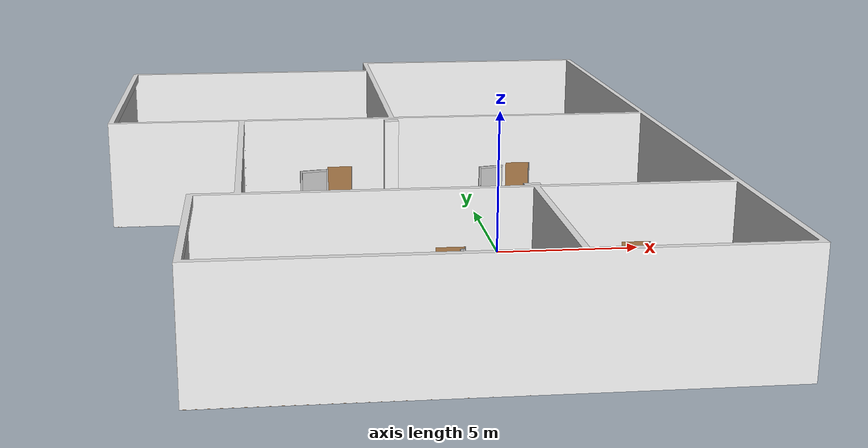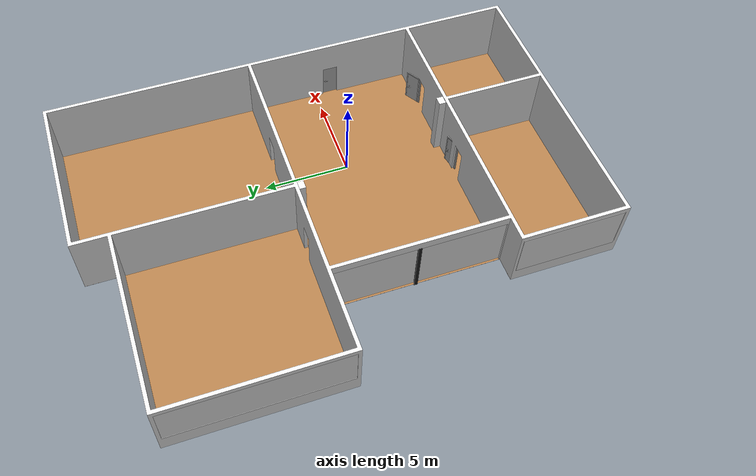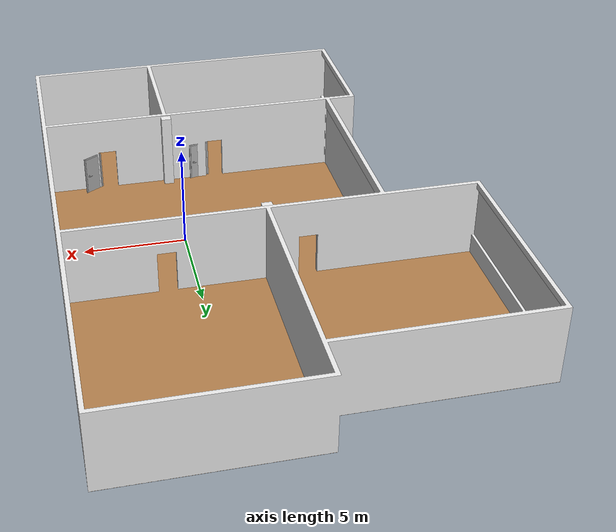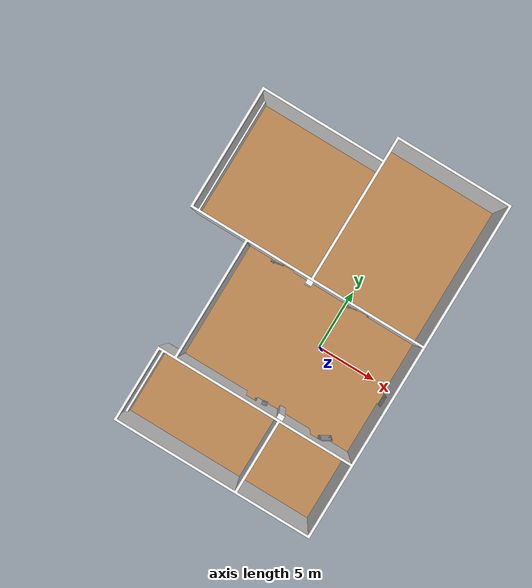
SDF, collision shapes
<?xml version='1.0'?>
<sdf version='1.6'>
  <model name='apartment'>
    <link name='link_0'>
      <inertial>
        <mass>0</mass>
        <inertia>
          <ixx>0</ixx>
          <ixy>0</ixy>
          <ixz>0</ixz>
          <iyy>0</iyy>
          <iyz>0</iyz>
          <izz>0</izz>
        </inertia>
        <pose frame=''>0 0 0 1.5708 -0 0</pose>
      </inertial>
      <pose frame=''>0 4 0.005 1.5708 -0 0</pose>
      <gravity>1</gravity>
      <self_collide>0</self_collide>
      <kinematic>0</kinematic>
      <enable_wind>0</enable_wind>
      <visual name='visual'>
        <pose frame=''>0 0 0 0 -0 0</pose>
        <geometry>
          <mesh>
            <uri>/home/pokpong/catkin_ws/src/rhodent502/rhodent_gazebo/worlds/meshes/floor.stl</uri>
            <scale>1 1 1</scale>
          </mesh>
        </geometry>
        <material>
          <lighting>1</lighting>
          <script>
            <uri>file://media/materials/scripts/gazebo.material</uri>
            <name>Gazebo/Wood</name>
          </script>
          <shader type='vertex'>
            <normal_map>__default__</normal_map>
          </shader>
          <ambient>0.3 0.3 0.3 1</ambient>
          <diffuse>0.7 0.7 0.7 1</diffuse>
          <specular>0.01 0.01 0.01 1</specular>
          <emissive>0 0 0 1</emissive>
        </material>
        <transparency>0</transparency>
        <cast_shadows>1</cast_shadows>
      </visual>
      <collision name='collision'>
        <laser_retro>0</laser_retro>
        <max_contacts>10</max_contacts>
        <pose frame=''>0 0 0 0 -0 0</pose>
        <geometry>
          <mesh>
            <uri>/home/pokpong/catkin_ws/src/rhodent502/rhodent_gazebo/worlds/meshes/floor.stl</uri>
            <scale>1 1 1</scale>
          </mesh>
        </geometry>
        <surface>
          <friction>
            <ode>
              <mu>1</mu>
              <mu2>1</mu2>
              <fdir1>0 0 0</fdir1>
              <slip1>0</slip1>
              <slip2>0</slip2>
            </ode>
            <torsional>
              <coefficient>1</coefficient>
              <patch_radius>0</patch_radius>
              <surface_radius>0</surface_radius>
              <use_patch_radius>1</use_patch_radius>
              <ode>
                <slip>0</slip>
              </ode>
            </torsional>
          </friction>
          <bounce>
            <restitution_coefficient>0</restitution_coefficient>
            <threshold>1e+06</threshold>
          </bounce>
          <contact>
            <collide_without_contact>0</collide_without_contact>
            <collide_without_contact_bitmask>1</collide_without_contact_bitmask>
            <collide_bitmask>1</collide_bitmask>
            <ode>
              <soft_cfm>0</soft_cfm>
              <soft_erp>0.2</soft_erp>
              <kp>1e+13</kp>
              <kd>1</kd>
              <max_vel>0.01</max_vel>
              <min_depth>0</min_depth>
            </ode>
            <bullet>
              <split_impulse>1</split_impulse>
              <split_impulse_penetration_threshold>-0.01</split_impulse_penetration_threshold>
              <soft_cfm>0</soft_cfm>
              <soft_erp>0.2</soft_erp>
              <kp>1e+13</kp>
              <kd>1</kd>
            </bullet>
          </contact>
        </surface>
      </collision>
    </link>
    <link name='link_0_0'>
      <inertial>
        <mass>1.13298</mass>
        <inertia>
          <ixx>1.81552</ixx>
          <ixy>0</ixy>
          <ixz>0</ixz>
          <iyy>1.81413</iyy>
          <iyz>0</iyz>
          <izz>0.049155</izz>
        </inertia>
        <pose frame=''>0 0 0 0 -0 0</pose>
      </inertial>
      <pose frame=''>-3.33733 3.83935 1.77092 0 -0 0</pose>
      <gravity>1</gravity>
      <self_collide>0</self_collide>
      <kinematic>0</kinematic>
      <enable_wind>0</enable_wind>
      <visual name='visual'>
        <pose frame=''>0 0 0 0 -0 0</pose>
        <geometry>
          <box>
            <size>0.502908 0.517406 4.35447</size>
          </box>
        </geometry>
        <material>
          <lighting>1</lighting>
          <script>
            <uri>file://media/materials/scripts/gazebo.material</uri>
            <name>Gazebo/White</name>
          </script>
          <shader type='vertex'>
            <normal_map>__default__</normal_map>
          </shader>
          <ambient>1 1 1 1</ambient>
          <diffuse>1 1 1 1</diffuse>
          <specular>0 0 0 1</specular>
          <emissive>0 0 0 1</emissive>
        </material>
        <transparency>0</transparency>
        <cast_shadows>1</cast_shadows>
      </visual>
      <collision name='collision'>
        <laser_retro>0</laser_retro>
        <max_contacts>10</max_contacts>
        <pose frame=''>0 0 0 0 -0 0</pose>
        <geometry>
          <box>
            <size>0.502908 0.517406 4.35447</size>
          </box>
        </geometry>
        <surface>
          <friction>
            <ode>
              <mu>1</mu>
              <mu2>1</mu2>
              <fdir1>0 0 0</fdir1>
              <slip1>0</slip1>
              <slip2>0</slip2>
            </ode>
            <torsional>
              <coefficient>1</coefficient>
              <patch_radius>0</patch_radius>
              <surface_radius>0</surface_radius>
              <use_patch_radius>1</use_patch_radius>
              <ode>
                <slip>0</slip>
              </ode>
            </torsional>
          </friction>
          <bounce>
            <restitution_coefficient>0</restitution_coefficient>
            <threshold>1e+06</threshold>
          </bounce>
          <contact>
            <collide_without_contact>0</collide_without_contact>
            <collide_without_contact_bitmask>1</collide_without_contact_bitmask>
            <collide_bitmask>1</collide_bitmask>
            <ode>
              <soft_cfm>0</soft_cfm>
              <soft_erp>0.2</soft_erp>
              <kp>1e+13</kp>
              <kd>1</kd>
              <max_vel>0.01</max_vel>
              <min_depth>0</min_depth>
            </ode>
            <bullet>
              <split_impulse>1</split_impulse>
              <split_impulse_penetration_threshold>-0.01</split_impulse_penetration_threshold>
              <soft_cfm>0</soft_cfm>
              <soft_erp>0.2</soft_erp>
              <kp>1e+13</kp>
              <kd>1</kd>
            </bullet>
          </contact>
        </surface>
      </collision>
    </link>
    <link name='link_0_0_clone'>
      <inertial>
        <mass>1.13298</mass>
        <inertia>
          <ixx>1.81552</ixx>
          <ixy>0</ixy>
          <ixz>0</ixz>
          <iyy>1.81413</iyy>
          <iyz>0</iyz>
          <izz>0.049155</izz>
        </inertia>
        <pose frame=''>0 0 0 0 -0 0</pose>
      </inertial>
      <pose frame=''>-0.038398 -5.7062 1.77092 0 -0 0</pose>
      <gravity>1</gravity>
      <self_collide>0</self_collide>
      <kinematic>0</kinematic>
      <enable_wind>0</enable_wind>
      <visual name='visual_0'>
        <pose frame=''>0 0 0 0 -0 0</pose>
        <geometry>
          <box>
            <size>0.502908 0.517406 4.35447</size>
          </box>
        </geometry>
        <material>
          <lighting>1</lighting>
          <script>
            <uri>file://media/materials/scripts/gazebo.material</uri>
            <name>Gazebo/White</name>
          </script>
          <shader type='vertex'>
            <normal_map>__default__</normal_map>
          </shader>
          <ambient>1 1 1 1</ambient>
          <diffuse>1 1 1 1</diffuse>
          <specular>0 0 0 1</specular>
          <emissive>0 0 0 1</emissive>
        </material>
        <transparency>0</transparency>
        <cast_shadows>1</cast_shadows>
      </visual>
      <collision name='collision'>
        <laser_retro>0</laser_retro>
        <max_contacts>10</max_contacts>
        <pose frame=''>0 0 0 0 -0 0</pose>
        <geometry>
          <box>
            <size>0.502908 0.517406 4.35447</size>
          </box>
        </geometry>
        <surface>
          <friction>
            <ode>
              <mu>1</mu>
              <mu2>1</mu2>
              <fdir1>0 0 0</fdir1>
              <slip1>0</slip1>
              <slip2>0</slip2>
            </ode>
            <torsional>
              <coefficient>1</coefficient>
              <patch_radius>0</patch_radius>
              <surface_radius>0</surface_radius>
              <use_patch_radius>1</use_patch_radius>
              <ode>
                <slip>0</slip>
              </ode>
            </torsional>
          </friction>
          <bounce>
            <restitution_coefficient>0</restitution_coefficient>
            <threshold>1e+06</threshold>
          </bounce>
          <contact>
            <collide_without_contact>0</collide_without_contact>
            <collide_without_contact_bitmask>1</collide_without_contact_bitmask>
            <collide_bitmask>1</collide_bitmask>
            <ode>
              <soft_cfm>0</soft_cfm>
              <soft_erp>0.2</soft_erp>
              <kp>1e+13</kp>
              <kd>1</kd>
              <max_vel>0.01</max_vel>
              <min_depth>0</min_depth>
            </ode>
            <bullet>
              <split_impulse>1</split_impulse>
              <split_impulse_penetration_threshold>-0.01</split_impulse_penetration_threshold>
              <soft_cfm>0</soft_cfm>
              <soft_erp>0.2</soft_erp>
              <kp>1e+13</kp>
              <kd>1</kd>
            </bullet>
          </contact>
        </surface>
      </collision>
    </link>
    <link name='link_0_0_clone_0'>
      <inertial>
        <mass>0.101594</mass>
        <inertia>
          <ixx>0.106414</ixx>
          <ixy>0</ixy>
          <ixz>0</ixz>
          <iyy>0.106214</iyy>
          <iyz>0</iyz>
          <izz>0.00052981</izz>
        </inertia>
        <pose frame=''>0 0 0 0 -0 0</pose>
      </inertial>
      <pose frame=''>-8.83545 -0.880256 1.77092 0 -0 0</pose>
      <gravity>1</gravity>
      <self_collide>0</self_collide>
      <kinematic>0</kinematic>
      <enable_wind>0</enable_wind>
      <visual name='visual_0'>
        <pose frame=''>0 0 0 0 -0 0</pose>
        <geometry>
          <box>
            <size>0.139435 0.207697 3.53925</size>
          </box>
        </geometry>
        <material>
          <lighting>1</lighting>
          <script>
            <uri>file://media/materials/scripts/gazebo.material</uri>
            <name>Gazebo/Black</name>
          </script>
          <shader type='vertex'>
            <normal_map>__default__</normal_map>
          </shader>
          <ambient>0 0 0 1</ambient>
          <diffuse>0 0 0 1</diffuse>
          <specular>0.1 0.1 0.1 1</specular>
          <emissive>0 0 0 1</emissive>
        </material>
        <transparency>0</transparency>
        <cast_shadows>1</cast_shadows>
      </visual>
      <collision name='collision'>
        <laser_retro>0</laser_retro>
        <max_contacts>10</max_contacts>
        <pose frame=''>0 0 0 0 -0 0</pose>
        <geometry>
          <box>
            <size>0.139435 0.207697 3.53925</size>
          </box>
        </geometry>
        <surface>
          <friction>
            <ode>
              <mu>1</mu>
              <mu2>1</mu2>
              <fdir1>0 0 0</fdir1>
              <slip1>0</slip1>
              <slip2>0</slip2>
            </ode>
            <torsional>
              <coefficient>1</coefficient>
              <patch_radius>0</patch_radius>
              <surface_radius>0</surface_radius>
              <use_patch_radius>1</use_patch_radius>
              <ode>
                <slip>0</slip>
              </ode>
            </torsional>
          </friction>
          <bounce>
            <restitution_coefficient>0</restitution_coefficient>
            <threshold>1e+06</threshold>
          </bounce>
          <contact>
            <collide_without_contact>0</collide_without_contact>
            <collide_without_contact_bitmask>1</collide_without_contact_bitmask>
            <collide_bitmask>1</collide_bitmask>
            <ode>
              <soft_cfm>0</soft_cfm>
              <soft_erp>0.2</soft_erp>
              <kp>1e+13</kp>
              <kd>1</kd>
              <max_vel>0.01</max_vel>
              <min_depth>0</min_depth>
            </ode>
            <bullet>
              <split_impulse>1</split_impulse>
              <split_impulse_penetration_threshold>-0.01</split_impulse_penetration_threshold>
              <soft_cfm>0</soft_cfm>
              <soft_erp>0.2</soft_erp>
              <kp>1e+13</kp>
              <kd>1</kd>
            </bullet>
          </contact>
        </surface>
      </collision>
    </link>
    <link name='link_1'>
      <inertial>
        <mass>1</mass>
        <inertia>
          <ixx>0.166667</ixx>
          <ixy>0</ixy>
          <ixz>0</ixz>
          <iyy>0.166667</iyy>
          <iyz>0</iyz>
          <izz>0.166667</izz>
        </inertia>
        <pose frame=''>0 0 0 0 -0 0</pose>
      </inertial>
      <pose frame=''>0 4 -0.005 1.5708 -0 0</pose>
      <gravity>1</gravity>
      <self_collide>0</self_collide>
      <kinematic>0</kinematic>
      <enable_wind>0</enable_wind>
      <visual name='visual'>
        <pose frame=''>0 0 0 0 -0 0</pose>
        <geometry>
          <mesh>
            <uri>/home/pokpong/catkin_ws/src/rhodent502/rhodent_gazebo/worlds/meshes/walls.stl</uri>
            <scale>1 1 1</scale>
          </mesh>
        </geometry>
        <material>
          <lighting>1</lighting>
          <script>
            <uri>file://media/materials/scripts/gazebo.material</uri>
            <name>Gazebo/White</name>
          </script>
          <shader type='pixel'>
            <normal_map>__default__</normal_map>
          </shader>
          <ambient>0.3 0.3 0.3 1</ambient>
          <diffuse>0.7 0.7 0.7 1</diffuse>
          <specular>0.01 0.01 0.01 1</specular>
          <emissive>0 0 0 1</emissive>
        </material>
        <transparency>0</transparency>
        <cast_shadows>1</cast_shadows>
      </visual>
      <collision name='collision'>
        <laser_retro>0</laser_retro>
        <max_contacts>10</max_contacts>
        <pose frame=''>0 0 0 0 -0 0</pose>
        <geometry>
          <mesh>
            <uri>/home/pokpong/catkin_ws/src/rhodent502/rhodent_gazebo/worlds/meshes/walls.stl</uri>
            <scale>1 1 1</scale>
          </mesh>
        </geometry>
        <surface>
          <friction>
            <ode>
              <mu>1</mu>
              <mu2>1</mu2>
              <fdir1>0 0 0</fdir1>
              <slip1>0</slip1>
              <slip2>0</slip2>
            </ode>
            <torsional>
              <coefficient>1</coefficient>
              <patch_radius>0</patch_radius>
              <surface_radius>0</surface_radius>
              <use_patch_radius>1</use_patch_radius>
              <ode>
                <slip>0</slip>
              </ode>
            </torsional>
          </friction>
          <bounce>
            <restitution_coefficient>0</restitution_coefficient>
            <threshold>1e+06</threshold>
          </bounce>
          <contact>
            <collide_without_contact>0</collide_without_contact>
            <collide_without_contact_bitmask>1</collide_without_contact_bitmask>
            <collide_bitmask>1</collide_bitmask>
            <ode>
              <soft_cfm>0</soft_cfm>
              <soft_erp>0.2</soft_erp>
              <kp>1e+13</kp>
              <kd>1</kd>
              <max_vel>0.01</max_vel>
              <min_depth>0</min_depth>
            </ode>
            <bullet>
              <split_impulse>1</split_impulse>
              <split_impulse_penetration_threshold>-0.01</split_impulse_penetration_threshold>
              <soft_cfm>0</soft_cfm>
              <soft_erp>0.2</soft_erp>
              <kp>1e+13</kp>
              <kd>1</kd>
            </bullet>
          </contact>
        </surface>
      </collision>
    </link>
    <link name='link_2'>
      <inertial>
        <mass>0.836022</mass>
        <inertia>
          <ixx>2.88865</ixx>
          <ixy>0</ixy>
          <ixz>0</ixz>
          <iyy>0.533193</iyy>
          <iyz>0</iyz>
          <izz>2.35583</izz>
        </inertia>
        <pose frame=''>0 0 0 0 -0 0</pose>
      </inertial>
      <pose frame=''>-10.2816 -8.9252 2.33504 0 -0 0</pose>
      <gravity>1</gravity>
      <self_collide>0</self_collide>
      <kinematic>0</kinematic>
      <enable_wind>0</enable_wind>
      <visual name='visual'>
        <pose frame=''>0 0 0 0 -0 0</pose>
        <geometry>
          <box>
            <size>0.051913 5.81482 2.76597</size>
          </box>
        </geometry>
        <material>
          <lighting>1</lighting>
          <script>
            <uri>file://media/materials/scripts/gazebo.material</uri>
            <name>Gazebo/White</name>
          </script>
          <shader type='vertex'>
            <normal_map>__default__</normal_map>
          </shader>
          <ambient>0.3 0.3 0.3 1</ambient>
          <diffuse>0.7 0.7 0.7 1</diffuse>
          <specular>0.01 0.01 0.01 1</specular>
          <emissive>0 0 0 1</emissive>
        </material>
        <transparency>1</transparency>
        <cast_shadows>1</cast_shadows>
      </visual>
      <collision name='collision'>
        <laser_retro>0</laser_retro>
        <max_contacts>10</max_contacts>
        <pose frame=''>0 0 0 0 -0 0</pose>
        <geometry>
          <box>
            <size>0.051913 5.81482 2.76597</size>
          </box>
        </geometry>
        <surface>
          <friction>
            <ode>
              <mu>1</mu>
              <mu2>1</mu2>
              <fdir1>0 0 0</fdir1>
              <slip1>0</slip1>
              <slip2>0</slip2>
            </ode>
            <torsional>
              <coefficient>1</coefficient>
              <patch_radius>0</patch_radius>
              <surface_radius>0</surface_radius>
              <use_patch_radius>1</use_patch_radius>
              <ode>
                <slip>0</slip>
              </ode>
            </torsional>
          </friction>
          <bounce>
            <restitution_coefficient>0</restitution_coefficient>
            <threshold>1e+06</threshold>
          </bounce>
          <contact>
            <collide_without_contact>0</collide_without_contact>
            <collide_without_contact_bitmask>1</collide_without_contact_bitmask>
            <collide_bitmask>1</collide_bitmask>
            <ode>
              <soft_cfm>0</soft_cfm>
              <soft_erp>0.2</soft_erp>
              <kp>1e+13</kp>
              <kd>1</kd>
              <max_vel>0.01</max_vel>
              <min_depth>0</min_depth>
            </ode>
            <bullet>
              <split_impulse>1</split_impulse>
              <split_impulse_penetration_threshold>-0.01</split_impulse_penetration_threshold>
              <soft_cfm>0</soft_cfm>
              <soft_erp>0.2</soft_erp>
              <kp>1e+13</kp>
              <kd>1</kd>
            </bullet>
          </contact>
        </surface>
      </collision>
    </link>
    <link name='link_2_clone'>
      <inertial>
        <mass>1.42305</mass>
        <inertia>
          <ixx>12.5248</ixx>
          <ixy>0</ixy>
          <ixz>0</ixz>
          <iyy>0.907582</iyy>
          <iyz>0</iyz>
          <izz>11.6178</izz>
        </inertia>
        <pose frame=''>0 0 0 0 -0 0</pose>
      </inertial>
      <pose frame=''>-13.5536 9.00979 2.33504 0 -0 0</pose>
      <gravity>1</gravity>
      <self_collide>0</self_collide>
      <kinematic>0</kinematic>
      <enable_wind>0</enable_wind>
      <visual name='visual'>
        <pose frame=''>0 0 0 0 -0 0</pose>
        <geometry>
          <box>
            <size>0.051913 9.89778 2.76597</size>
          </box>
        </geometry>
        <material>
          <lighting>1</lighting>
          <script>
            <uri>file://media/materials/scripts/gazebo.material</uri>
            <name>Gazebo/White</name>
          </script>
          <shader type='vertex'>
            <normal_map>__default__</normal_map>
          </shader>
          <ambient>0.3 0.3 0.3 1</ambient>
          <diffuse>0.7 0.7 0.7 1</diffuse>
          <specular>0.01 0.01 0.01 1</specular>
          <emissive>0 0 0 1</emissive>
        </material>
        <transparency>1</transparency>
        <cast_shadows>1</cast_shadows>
      </visual>
      <collision name='collision'>
        <laser_retro>0</laser_retro>
        <max_contacts>10</max_contacts>
        <pose frame=''>0 0 0 0 -0 0</pose>
        <geometry>
          <box>
            <size>0.051913 9.89778 2.76597</size>
          </box>
        </geometry>
        <surface>
          <friction>
            <ode>
              <mu>1</mu>
              <mu2>1</mu2>
              <fdir1>0 0 0</fdir1>
              <slip1>0</slip1>
              <slip2>0</slip2>
            </ode>
            <torsional>
              <coefficient>1</coefficient>
              <patch_radius>0</patch_radius>
              <surface_radius>0</surface_radius>
              <use_patch_radius>1</use_patch_radius>
              <ode>
                <slip>0</slip>
              </ode>
            </torsional>
          </friction>
          <bounce>
            <restitution_coefficient>0</restitution_coefficient>
            <threshold>1e+06</threshold>
          </bounce>
          <contact>
            <collide_without_contact>0</collide_without_contact>
            <collide_without_contact_bitmask>1</collide_without_contact_bitmask>
            <collide_bitmask>1</collide_bitmask>
            <ode>
              <soft_cfm>0</soft_cfm>
              <soft_erp>0.2</soft_erp>
              <kp>1e+13</kp>
              <kd>1</kd>
              <max_vel>0.01</max_vel>
              <min_depth>0</min_depth>
            </ode>
            <bullet>
              <split_impulse>1</split_impulse>
              <split_impulse_penetration_threshold>-0.01</split_impulse_penetration_threshold>
              <soft_cfm>0</soft_cfm>
              <soft_erp>0.2</soft_erp>
              <kp>1e+13</kp>
              <kd>1</kd>
            </bullet>
          </contact>
        </surface>
      </collision>
    </link>
    <link name='link_2_clone_0'>
      <inertial>
        <mass>1.70752</mass>
        <inertia>
          <ixx>15.0536</ixx>
          <ixy>0</ixy>
          <ixz>0</ixz>
          <iyy>1.62774</iyy>
          <iyz>0</iyz>
          <izz>13.4266</izz>
        </inertia>
        <pose frame=''>0 0 0 0 -0 0</pose>
      </inertial>
      <pose frame=''>-8.77295 -0.954757 1.82125 0 -0 0</pose>
      <gravity>1</gravity>
      <self_collide>0</self_collide>
      <kinematic>0</kinematic>
      <enable_wind>0</enable_wind>
      <visual name='visual'>
        <pose frame=''>0 0 0 0 -0 0</pose>
        <geometry>
          <box>
            <size>0.051913 9.71369 3.38181</size>
          </box>
        </geometry>
        <material>
          <lighting>1</lighting>
          <script>
            <uri>file://media/materials/scripts/gazebo.material</uri>
            <name>Gazebo/White</name>
          </script>
          <shader type='vertex'>
            <normal_map>__default__</normal_map>
          </shader>
          <ambient>0.3 0.3 0.3 1</ambient>
          <diffuse>0.7 0.7 0.7 1</diffuse>
          <specular>0.01 0.01 0.01 1</specular>
          <emissive>0 0 0 1</emissive>
        </material>
        <transparency>1</transparency>
        <cast_shadows>1</cast_shadows>
      </visual>
      <collision name='collision'>
        <laser_retro>0</laser_retro>
        <max_contacts>10</max_contacts>
        <pose frame=''>0 0 0 0 -0 0</pose>
        <geometry>
          <box>
            <size>0.051913 9.71369 3.38181</size>
          </box>
        </geometry>
        <surface>
          <friction>
            <ode>
              <mu>1</mu>
              <mu2>1</mu2>
              <fdir1>0 0 0</fdir1>
              <slip1>0</slip1>
              <slip2>0</slip2>
            </ode>
            <torsional>
              <coefficient>1</coefficient>
              <patch_radius>0</patch_radius>
              <surface_radius>0</surface_radius>
              <use_patch_radius>1</use_patch_radius>
              <ode>
                <slip>0</slip>
              </ode>
            </torsional>
          </friction>
          <bounce>
            <restitution_coefficient>0</restitution_coefficient>
            <threshold>1e+06</threshold>
          </bounce>
          <contact>
            <collide_without_contact>0</collide_without_contact>
            <collide_without_contact_bitmask>1</collide_without_contact_bitmask>
            <collide_bitmask>1</collide_bitmask>
            <ode>
              <soft_cfm>0</soft_cfm>
              <soft_erp>0.2</soft_erp>
              <kp>1e+13</kp>
              <kd>1</kd>
              <max_vel>0.01</max_vel>
              <min_depth>0</min_depth>
            </ode>
            <bullet>
              <split_impulse>1</split_impulse>
              <split_impulse_penetration_threshold>-0.01</split_impulse_penetration_threshold>
              <soft_cfm>0</soft_cfm>
              <soft_erp>0.2</soft_erp>
              <kp>1e+13</kp>
              <kd>1</kd>
            </bullet>
          </contact>
        </surface>
      </collision>
    </link>
    <model name='hinged_door'>
      <link name='frame'>
        <pose frame=''>0.06 -0.0005 0 0 -0 0</pose>
        <collision name='collision_1'>
          <pose frame=''>-0.025145 -0.03429 1.0541 0 -0 0</pose>
          <geometry>
            <box>
              <size>0.05029 0.06858 2.1082</size>
            </box>
          </geometry>
          <max_contacts>10</max_contacts>
          <surface>
            <contact>
              <ode/>
            </contact>
            <bounce/>
            <friction>
              <torsional>
                <ode/>
              </torsional>
              <ode/>
            </friction>
          </surface>
        </collision>
        <collision name='collision_2'>
          <pose frame=''>-0.025145 0.95631 1.0541 0 -0 0</pose>
          <geometry>
            <box>
              <size>0.05029 0.06858 2.1082</size>
            </box>
          </geometry>
          <max_contacts>10</max_contacts>
          <surface>
            <contact>
              <ode/>
            </contact>
            <bounce/>
            <friction>
              <torsional>
                <ode/>
              </torsional>
              <ode/>
            </friction>
          </surface>
        </collision>
        <collision name='collision_3'>
          <pose frame=''>-0.025145 0.46482 2.07137 0 -0 0</pose>
          <geometry>
            <box>
              <size>0.05029 0.92964 0.07366</size>
            </box>
          </geometry>
          <max_contacts>10</max_contacts>
          <surface>
            <contact>
              <ode/>
            </contact>
            <bounce/>
            <friction>
              <torsional>
                <ode/>
              </torsional>
              <ode/>
            </friction>
          </surface>
        </collision>
        <visual name='visual'>
          <pose frame=''>0 -0.06858 0 0 -0 0</pose>
          <geometry>
            <mesh>
              <uri>model://hinged_door/meshes/frame.dae</uri>
            </mesh>
          </geometry>
        </visual>
        <self_collide>0</self_collide>
        <inertial>
          <inertia>
            <ixx>1</ixx>
            <ixy>0</ixy>
            <ixz>0</ixz>
            <iyy>1</iyy>
            <iyz>0</iyz>
            <izz>1</izz>
          </inertia>
          <mass>1</mass>
        </inertial>
        <enable_wind>0</enable_wind>
        <kinematic>0</kinematic>
      </link>
      <link name='door'>
        <pose frame=''>-0 0 2.04 3.14159 -0 1.57</pose>
        <inertial>
          <mass>41.3256</mass>
          <pose frame=''>0.4569 0.0349 1.016 0 -0 0</pose>
          <inertia>
            <ixx>14.2053</ixx>
            <ixy>0.0004</ixy>
            <ixz>0</ixz>
            <iyy>17.1997</iyy>
            <iyz>0</iyz>
            <izz>3.0298</izz>
          </inertia>
        </inertial>
        <collision name='collision'>
          <pose frame=''>0.4569 0.0349 1.016 0 -0 0</pose>
          <geometry>
            <box>
              <size>0.9144 0.04445 2.032</size>
            </box>
          </geometry>
          <max_contacts>10</max_contacts>
          <surface>
            <contact>
              <ode/>
            </contact>
            <bounce/>
            <friction>
              <torsional>
                <ode/>
              </torsional>
              <ode/>
            </friction>
          </surface>
        </collision>
        <visual name='visual'>
          <pose frame=''>0 -0.06858 0 0 -0 0</pose>
          <geometry>
            <mesh>
              <uri>model://hinged_door/meshes/door.dae</uri>
            </mesh>
          </geometry>
        </visual>
        <self_collide>0</self_collide>
        <enable_wind>0</enable_wind>
        <kinematic>0</kinematic>
      </link>
      <link name='handles'>
        <pose frame=''>0 0.8 1.05 -3.14159 0.001593 -1.57159</pose>
        <collision name='handle1_collision'>
          <pose frame=''>0.015 -0.015 0 -1.57 0 0</pose>
          <geometry>
            <mesh>
              <uri>model://door_handle/meshes/handle.dae</uri>
            </mesh>
          </geometry>
          <max_contacts>10</max_contacts>
          <surface>
            <contact>
              <ode/>
            </contact>
            <bounce/>
            <friction>
              <torsional>
                <ode/>
              </torsional>
              <ode/>
            </friction>
          </surface>
        </collision>
        <visual name='handle1_visual'>
          <pose frame=''>0.015 -0.015 0 -1.57 0 0</pose>
          <geometry>
            <mesh>
              <uri>model://door_handle/meshes/handle.dae</uri>
            </mesh>
          </geometry>
        </visual>
        <collision name='handle2_collision'>
          <pose frame=''>0.015 -0.055 0 1.57 -0 0</pose>
          <geometry>
            <mesh>
              <uri>model://door_handle/meshes/handle.dae</uri>
            </mesh>
          </geometry>
          <max_contacts>10</max_contacts>
          <surface>
            <contact>
              <ode/>
            </contact>
            <bounce/>
            <friction>
              <torsional>
                <ode/>
              </torsional>
              <ode/>
            </friction>
          </surface>
        </collision>
        <visual name='handle2_visual'>
          <pose frame=''>0.015 -0.055 0 1.57 -0 0</pose>
          <geometry>
            <mesh>
              <uri>model://door_handle/meshes/handle.dae</uri>
            </mesh>
          </geometry>
        </visual>
        <self_collide>0</self_collide>
        <inertial>
          <inertia>
            <ixx>1</ixx>
            <ixy>0</ixy>
            <ixz>0</ixz>
            <iyy>1</iyy>
            <iyz>0</iyz>
            <izz>1</izz>
          </inertia>
          <mass>1</mass>
        </inertial>
        <enable_wind>0</enable_wind>
        <kinematic>0</kinematic>
      </link>
      <joint name='handle' type='revolute'>
        <parent>door</parent>
        <child>handles</child>
        <pose frame=''>0.015 0 0 0 -0 0</pose>
        <axis>
          <xyz>1 0 0</xyz>
          <limit>
            <lower>0</lower>
            <upper>1.58</upper>
          </limit>
          <dynamics>
            <damping>0.1</damping>
            <spring_stiffness>0.3</spring_stiffness>
            <spring_reference>0</spring_reference>
          </dynamics>
          <use_parent_model_frame>1</use_parent_model_frame>
        </axis>
        <physics>
          <ode>
            <cfm_damping>1</cfm_damping>
            <limit>
              <cfm>0</cfm>
              <erp>0.2</erp>
            </limit>
          </ode>
        </physics>
      </joint>
      <joint name='hinge' type='revolute'>
        <parent>frame</parent>
        <child>door</child>
        <axis>
          <xyz>0 0 1</xyz>
          <limit>
            <lower>0</lower>
            <upper>1.58</upper>
          </limit>
          <dynamics>
            <damping>1</damping>
            <friction>1</friction>
            <spring_reference>0</spring_reference>
            <spring_stiffness>0</spring_stiffness>
          </dynamics>
          <use_parent_model_frame>1</use_parent_model_frame>
        </axis>
        <physics>
          <ode>
            <cfm_damping>1</cfm_damping>
            <limit>
              <cfm>0</cfm>
              <erp>0.2</erp>
            </limit>
          </ode>
        </physics>
      </joint>
      <joint name='world_joint' type='revolute'>
        <child>frame</child>
        <parent>world</parent>
        <axis>
          <limit>
            <lower>0</lower>
            <upper>0</upper>
          </limit>
          <xyz>0 1 0</xyz>
          <dynamics>
            <damping>1</damping>
            <spring_reference>0</spring_reference>
            <spring_stiffness>0</spring_stiffness>
          </dynamics>
          <use_parent_model_frame>1</use_parent_model_frame>
        </axis>
        <physics>
          <ode>
            <cfm_damping>1</cfm_damping>
            <limit>
              <cfm>0</cfm>
              <erp>0.2</erp>
            </limit>
          </ode>
        </physics>
      </joint>
      <pose frame=''>6.18075 -1.43335 0.067444 0 -0 0</pose>
    </model>
    <model name='hinged_door_0'>
      <link name='frame'>
        <pose frame=''>0.06 -0.0005 0 0 -0 0</pose>
        <collision name='collision_1'>
          <pose frame=''>-0.025145 -0.03429 1.0541 0 -0 0</pose>
          <geometry>
            <box>
              <size>0.05029 0.06858 2.1082</size>
            </box>
          </geometry>
          <max_contacts>10</max_contacts>
          <surface>
            <contact>
              <ode/>
            </contact>
            <bounce/>
            <friction>
              <torsional>
                <ode/>
              </torsional>
              <ode/>
            </friction>
          </surface>
        </collision>
        <collision name='collision_2'>
          <pose frame=''>-0.025145 0.95631 1.0541 0 -0 0</pose>
          <geometry>
            <box>
              <size>0.05029 0.06858 2.1082</size>
            </box>
          </geometry>
          <max_contacts>10</max_contacts>
          <surface>
            <contact>
              <ode/>
            </contact>
            <bounce/>
            <friction>
              <torsional>
                <ode/>
              </torsional>
              <ode/>
            </friction>
          </surface>
        </collision>
        <collision name='collision_3'>
          <pose frame=''>-0.025145 0.46482 2.07137 0 -0 0</pose>
          <geometry>
            <box>
              <size>0.05029 0.92964 0.07366</size>
            </box>
          </geometry>
          <max_contacts>10</max_contacts>
          <surface>
            <contact>
              <ode/>
            </contact>
            <bounce/>
            <friction>
              <torsional>
                <ode/>
              </torsional>
              <ode/>
            </friction>
          </surface>
        </collision>
        <visual name='visual'>
          <pose frame=''>0 -0.06858 0 0 -0 0</pose>
          <geometry>
            <mesh>
              <uri>model://hinged_door/meshes/frame.dae</uri>
            </mesh>
          </geometry>
        </visual>
        <self_collide>0</self_collide>
        <inertial>
          <inertia>
            <ixx>1</ixx>
            <ixy>0</ixy>
            <ixz>0</ixz>
            <iyy>1</iyy>
            <iyz>0</iyz>
            <izz>1</izz>
          </inertia>
          <mass>1</mass>
        </inertial>
        <enable_wind>0</enable_wind>
        <kinematic>0</kinematic>
      </link>
      <link name='door'>
        <pose frame=''>-0 0 2.04 3.14159 -0 1.57</pose>
        <inertial>
          <mass>41.3256</mass>
          <pose frame=''>0.4569 0.0349 1.016 0 -0 0</pose>
          <inertia>
            <ixx>14.2053</ixx>
            <ixy>0.0004</ixy>
            <ixz>0</ixz>
            <iyy>17.1997</iyy>
            <iyz>0</iyz>
            <izz>3.0298</izz>
          </inertia>
        </inertial>
        <collision name='collision'>
          <pose frame=''>0.4569 0.0349 1.016 0 -0 0</pose>
          <geometry>
            <box>
              <size>0.9144 0.04445 2.032</size>
            </box>
          </geometry>
          <max_contacts>10</max_contacts>
          <surface>
            <contact>
              <ode/>
            </contact>
            <bounce/>
            <friction>
              <torsional>
                <ode/>
              </torsional>
              <ode/>
            </friction>
          </surface>
        </collision>
        <visual name='visual'>
          <pose frame=''>0 -0.06858 0 0 -0 0</pose>
          <geometry>
            <mesh>
              <uri>model://hinged_door/meshes/door.dae</uri>
            </mesh>
          </geometry>
        </visual>
        <self_collide>0</self_collide>
        <enable_wind>0</enable_wind>
        <kinematic>0</kinematic>
      </link>
      <link name='handles'>
        <pose frame=''>0 0.8 1.05 -3.14159 0.001593 -1.57159</pose>
        <collision name='handle1_collision'>
          <pose frame=''>0.015 -0.015 0 -1.57 0 0</pose>
          <geometry>
            <mesh>
              <uri>model://door_handle/meshes/handle.dae</uri>
            </mesh>
          </geometry>
          <max_contacts>10</max_contacts>
          <surface>
            <contact>
              <ode/>
            </contact>
            <bounce/>
            <friction>
              <torsional>
                <ode/>
              </torsional>
              <ode/>
            </friction>
          </surface>
        </collision>
        <visual name='handle1_visual'>
          <pose frame=''>0.015 -0.015 0 -1.57 0 0</pose>
          <geometry>
            <mesh>
              <uri>model://door_handle/meshes/handle.dae</uri>
            </mesh>
          </geometry>
        </visual>
        <collision name='handle2_collision'>
          <pose frame=''>0.015 -0.055 0 1.57 -0 0</pose>
          <geometry>
            <mesh>
              <uri>model://door_handle/meshes/handle.dae</uri>
            </mesh>
          </geometry>
          <max_contacts>10</max_contacts>
          <surface>
            <contact>
              <ode/>
            </contact>
            <bounce/>
            <friction>
              <torsional>
                <ode/>
              </torsional>
              <ode/>
            </friction>
          </surface>
        </collision>
        <visual name='handle2_visual'>
          <pose frame=''>0.015 -0.055 0 1.57 -0 0</pose>
          <geometry>
            <mesh>
              <uri>model://door_handle/meshes/handle.dae</uri>
            </mesh>
          </geometry>
        </visual>
        <self_collide>0</self_collide>
        <inertial>
          <inertia>
            <ixx>1</ixx>
            <ixy>0</ixy>
            <ixz>0</ixz>
            <iyy>1</iyy>
            <iyz>0</iyz>
            <izz>1</izz>
          </inertia>
          <mass>1</mass>
        </inertial>
        <enable_wind>0</enable_wind>
        <kinematic>0</kinematic>
      </link>
      <joint name='handle' type='revolute'>
        <parent>door</parent>
        <child>handles</child>
        <pose frame=''>0.015 0 0 0 -0 0</pose>
        <axis>
          <xyz>1 0 0</xyz>
          <limit>
            <lower>0</lower>
            <upper>1.58</upper>
          </limit>
          <dynamics>
            <damping>0.1</damping>
            <spring_stiffness>0.3</spring_stiffness>
            <spring_reference>0</spring_reference>
          </dynamics>
          <use_parent_model_frame>1</use_parent_model_frame>
        </axis>
        <physics>
          <ode>
            <cfm_damping>1</cfm_damping>
            <limit>
              <cfm>0</cfm>
              <erp>0.2</erp>
            </limit>
          </ode>
        </physics>
      </joint>
      <joint name='hinge' type='revolute'>
        <parent>frame</parent>
        <child>door</child>
        <axis>
          <xyz>0 0 1</xyz>
          <limit>
            <lower>0</lower>
            <upper>1.58</upper>
          </limit>
          <dynamics>
            <damping>1</damping>
            <friction>1</friction>
            <spring_reference>0</spring_reference>
            <spring_stiffness>0</spring_stiffness>
          </dynamics>
          <use_parent_model_frame>1</use_parent_model_frame>
        </axis>
        <physics>
          <ode>
            <cfm_damping>1</cfm_damping>
            <limit>
              <cfm>0</cfm>
              <erp>0.2</erp>
            </limit>
          </ode>
        </physics>
      </joint>
      <joint name='world_joint' type='revolute'>
        <child>frame</child>
        <parent>world</parent>
        <axis>
          <limit>
            <lower>0</lower>
            <upper>0</upper>
          </limit>
          <xyz>0 1 0</xyz>
          <dynamics>
            <damping>1</damping>
            <spring_reference>0</spring_reference>
            <spring_stiffness>0</spring_stiffness>
          </dynamics>
          <use_parent_model_frame>1</use_parent_model_frame>
        </axis>
        <physics>
          <ode>
            <cfm_damping>1</cfm_damping>
            <limit>
              <cfm>0</cfm>
              <erp>0.2</erp>
            </limit>
          </ode>
        </physics>
      </joint>
      <pose frame=''>3.49497 -5.90974 0 0 0 -1.02554</pose>
    </model>
    <model name='hinged_door_0_clone'>
      <link name='frame'>
        <pose frame=''>0.06 -0.0005 0 0 -0 0</pose>
        <collision name='collision_1'>
          <pose frame=''>-0.025145 -0.03429 1.0541 0 -0 0</pose>
          <geometry>
            <box>
              <size>0.05029 0.06858 2.1082</size>
            </box>
          </geometry>
          <max_contacts>10</max_contacts>
          <surface>
            <contact>
              <ode/>
            </contact>
            <bounce/>
            <friction>
              <torsional>
                <ode/>
              </torsional>
              <ode/>
            </friction>
          </surface>
        </collision>
        <collision name='collision_2'>
          <pose frame=''>-0.025145 0.95631 1.0541 0 -0 0</pose>
          <geometry>
            <box>
              <size>0.05029 0.06858 2.1082</size>
            </box>
          </geometry>
          <max_contacts>10</max_contacts>
          <surface>
            <contact>
              <ode/>
            </contact>
            <bounce/>
            <friction>
              <torsional>
                <ode/>
              </torsional>
              <ode/>
            </friction>
          </surface>
        </collision>
        <collision name='collision_3'>
          <pose frame=''>-0.025145 0.46482 2.07137 0 -0 0</pose>
          <geometry>
            <box>
              <size>0.05029 0.92964 0.07366</size>
            </box>
          </geometry>
          <max_contacts>10</max_contacts>
          <surface>
            <contact>
              <ode/>
            </contact>
            <bounce/>
            <friction>
              <torsional>
                <ode/>
              </torsional>
              <ode/>
            </friction>
          </surface>
        </collision>
        <visual name='visual'>
          <pose frame=''>0 -0.06858 0 0 -0 0</pose>
          <geometry>
            <mesh>
              <uri>model://hinged_door/meshes/frame.dae</uri>
            </mesh>
          </geometry>
        </visual>
        <self_collide>0</self_collide>
        <inertial>
          <inertia>
            <ixx>1</ixx>
            <ixy>0</ixy>
            <ixz>0</ixz>
            <iyy>1</iyy>
            <iyz>0</iyz>
            <izz>1</izz>
          </inertia>
          <mass>1</mass>
        </inertial>
        <enable_wind>0</enable_wind>
        <kinematic>0</kinematic>
      </link>
      <link name='door'>
        <pose frame=''>-0 0 2.04 3.14159 -0 1.57</pose>
        <inertial>
          <mass>41.3256</mass>
          <pose frame=''>0.4569 0.0349 1.016 0 -0 0</pose>
          <inertia>
            <ixx>14.2053</ixx>
            <ixy>0.0004</ixy>
            <ixz>0</ixz>
            <iyy>17.1997</iyy>
            <iyz>0</iyz>
            <izz>3.0298</izz>
          </inertia>
        </inertial>
        <collision name='collision'>
          <pose frame=''>0.4569 0.0349 1.016 0 -0 0</pose>
          <geometry>
            <box>
              <size>0.9144 0.04445 2.032</size>
            </box>
          </geometry>
          <max_contacts>10</max_contacts>
          <surface>
            <contact>
              <ode/>
            </contact>
            <bounce/>
            <friction>
              <torsional>
                <ode/>
              </torsional>
              <ode/>
            </friction>
          </surface>
        </collision>
        <visual name='visual'>
          <pose frame=''>0 -0.06858 0 0 -0 0</pose>
          <geometry>
            <mesh>
              <uri>model://hinged_door/meshes/door.dae</uri>
            </mesh>
          </geometry>
        </visual>
        <self_collide>0</self_collide>
        <enable_wind>0</enable_wind>
        <kinematic>0</kinematic>
      </link>
      <link name='handles'>
        <pose frame=''>0 0.8 1.05 -3.14159 0.001593 -1.57159</pose>
        <collision name='handle1_collision'>
          <pose frame=''>0.015 -0.015 0 -1.57 0 0</pose>
          <geometry>
            <mesh>
              <uri>model://door_handle/meshes/handle.dae</uri>
            </mesh>
          </geometry>
          <max_contacts>10</max_contacts>
          <surface>
            <contact>
              <ode/>
            </contact>
            <bounce/>
            <friction>
              <torsional>
                <ode/>
              </torsional>
              <ode/>
            </friction>
          </surface>
        </collision>
        <visual name='handle1_visual'>
          <pose frame=''>0.015 -0.015 0 -1.57 0 0</pose>
          <geometry>
            <mesh>
              <uri>model://door_handle/meshes/handle.dae</uri>
            </mesh>
          </geometry>
        </visual>
        <collision name='handle2_collision'>
          <pose frame=''>0.015 -0.055 0 1.57 -0 0</pose>
          <geometry>
            <mesh>
              <uri>model://door_handle/meshes/handle.dae</uri>
            </mesh>
          </geometry>
          <max_contacts>10</max_contacts>
          <surface>
            <contact>
              <ode/>
            </contact>
            <bounce/>
            <friction>
              <torsional>
                <ode/>
              </torsional>
              <ode/>
            </friction>
          </surface>
        </collision>
        <visual name='handle2_visual'>
          <pose frame=''>0.015 -0.055 0 1.57 -0 0</pose>
          <geometry>
            <mesh>
              <uri>model://door_handle/meshes/handle.dae</uri>
            </mesh>
          </geometry>
        </visual>
        <self_collide>0</self_collide>
        <inertial>
          <inertia>
            <ixx>1</ixx>
            <ixy>0</ixy>
            <ixz>0</ixz>
            <iyy>1</iyy>
            <iyz>0</iyz>
            <izz>1</izz>
          </inertia>
          <mass>1</mass>
        </inertial>
        <enable_wind>0</enable_wind>
        <kinematic>0</kinematic>
      </link>
      <joint name='handle' type='revolute'>
        <parent>door</parent>
        <child>handles</child>
        <pose frame=''>0.015 0 0 0 -0 0</pose>
        <axis>
          <xyz>1 0 0</xyz>
          <limit>
            <lower>0</lower>
            <upper>1.58</upper>
          </limit>
          <dynamics>
            <damping>0.1</damping>
            <spring_stiffness>0.3</spring_stiffness>
            <spring_reference>0</spring_reference>
          </dynamics>
          <use_parent_model_frame>1</use_parent_model_frame>
        </axis>
        <physics>
          <ode>
            <cfm_damping>1</cfm_damping>
            <limit>
              <cfm>0</cfm>
              <erp>0.2</erp>
            </limit>
          </ode>
        </physics>
      </joint>
      <joint name='hinge' type='revolute'>
        <parent>frame</parent>
        <child>door</child>
        <axis>
          <xyz>0 0 1</xyz>
          <limit>
            <lower>0</lower>
            <upper>1.58</upper>
          </limit>
          <dynamics>
            <damping>1</damping>
            <friction>1</friction>
            <spring_reference>0</spring_reference>
            <spring_stiffness>0</spring_stiffness>
          </dynamics>
          <use_parent_model_frame>1</use_parent_model_frame>
        </axis>
        <physics>
          <ode>
            <cfm_damping>1</cfm_damping>
            <limit>
              <cfm>0</cfm>
              <erp>0.2</erp>
            </limit>
          </ode>
        </physics>
      </joint>
      <joint name='world_joint' type='revolute'>
        <child>frame</child>
        <parent>world</parent>
        <axis>
          <limit>
            <lower>0</lower>
            <upper>0</upper>
          </limit>
          <xyz>0 1 0</xyz>
          <dynamics>
            <damping>1</damping>
            <spring_reference>0</spring_reference>
            <spring_stiffness>0</spring_stiffness>
          </dynamics>
          <use_parent_model_frame>1</use_parent_model_frame>
        </axis>
        <physics>
          <ode>
            <cfm_damping>1</cfm_damping>
            <limit>
              <cfm>0</cfm>
              <erp>0.2</erp>
            </limit>
          </ode>
        </physics>
      </joint>
      <pose frame=''>-2.19118 -5.96022 0 0 0 -1.3396</pose>
    </model>
    <model name='hinged_door_0_clone_0'>
      <link name='frame'>
        <pose frame=''>0.06 -0.0005 0 0 -0 0</pose>
        <collision name='collision_1'>
          <pose frame=''>-0.025145 -0.03429 1.0541 0 -0 0</pose>
          <geometry>
            <box>
              <size>0.05029 0.06858 2.1082</size>
            </box>
          </geometry>
          <max_contacts>10</max_contacts>
          <surface>
            <contact>
              <ode/>
            </contact>
            <bounce/>
            <friction>
              <torsional>
                <ode/>
              </torsional>
              <ode/>
            </friction>
          </surface>
        </collision>
        <collision name='collision_2'>
          <pose frame=''>-0.025145 0.95631 1.0541 0 -0 0</pose>
          <geometry>
            <box>
              <size>0.05029 0.06858 2.1082</size>
            </box>
          </geometry>
          <max_contacts>10</max_contacts>
          <surface>
            <contact>
              <ode/>
            </contact>
            <bounce/>
            <friction>
              <torsional>
                <ode/>
              </torsional>
              <ode/>
            </friction>
          </surface>
        </collision>
        <collision name='collision_3'>
          <pose frame=''>-0.025145 0.46482 2.07137 0 -0 0</pose>
          <geometry>
            <box>
              <size>0.05029 0.92964 0.07366</size>
            </box>
          </geometry>
          <max_contacts>10</max_contacts>
          <surface>
            <contact>
              <ode/>
            </contact>
            <bounce/>
            <friction>
              <torsional>
                <ode/>
              </torsional>
              <ode/>
            </friction>
          </surface>
        </collision>
        <visual name='visual'>
          <pose frame=''>0 -0.06858 0 0 -0 0</pose>
          <geometry>
            <mesh>
              <uri>model://hinged_door/meshes/frame.dae</uri>
            </mesh>
          </geometry>
        </visual>
        <self_collide>0</self_collide>
        <inertial>
          <inertia>
            <ixx>1</ixx>
            <ixy>0</ixy>
            <ixz>0</ixz>
            <iyy>1</iyy>
            <iyz>0</iyz>
            <izz>1</izz>
          </inertia>
          <mass>1</mass>
        </inertial>
        <enable_wind>0</enable_wind>
        <kinematic>0</kinematic>
      </link>
      <link name='door'>
        <pose frame=''>-0 0 2.04 3.14159 -0 1.57</pose>
        <inertial>
          <mass>41.3256</mass>
          <pose frame=''>0.4569 0.0349 1.016 0 -0 0</pose>
          <inertia>
            <ixx>14.2053</ixx>
            <ixy>0.0004</ixy>
            <ixz>0</ixz>
            <iyy>17.1997</iyy>
            <iyz>0</iyz>
            <izz>3.0298</izz>
          </inertia>
        </inertial>
        <collision name='collision'>
          <pose frame=''>0.4569 0.0349 1.016 0 -0 0</pose>
          <geometry>
            <box>
              <size>0.9144 0.04445 2.032</size>
            </box>
          </geometry>
          <max_contacts>10</max_contacts>
          <surface>
            <contact>
              <ode/>
            </contact>
            <bounce/>
            <friction>
              <torsional>
                <ode/>
              </torsional>
              <ode/>
            </friction>
          </surface>
        </collision>
        <visual name='visual'>
          <pose frame=''>0 -0.06858 0 0 -0 0</pose>
          <geometry>
            <mesh>
              <uri>model://hinged_door/meshes/door.dae</uri>
            </mesh>
          </geometry>
        </visual>
        <self_collide>0</self_collide>
        <enable_wind>0</enable_wind>
        <kinematic>0</kinematic>
      </link>
      <link name='handles'>
        <pose frame=''>0 0.8 1.05 -3.14159 0.001593 -1.57159</pose>
        <collision name='handle1_collision'>
          <pose frame=''>0.015 -0.015 0 -1.57 0 0</pose>
          <geometry>
            <mesh>
              <uri>model://door_handle/meshes/handle.dae</uri>
            </mesh>
          </geometry>
          <max_contacts>10</max_contacts>
          <surface>
            <contact>
              <ode/>
            </contact>
            <bounce/>
            <friction>
              <torsional>
                <ode/>
              </torsional>
              <ode/>
            </friction>
          </surface>
        </collision>
        <visual name='handle1_visual'>
          <pose frame=''>0.015 -0.015 0 -1.57 0 0</pose>
          <geometry>
            <mesh>
              <uri>model://door_handle/meshes/handle.dae</uri>
            </mesh>
          </geometry>
        </visual>
        <collision name='handle2_collision'>
          <pose frame=''>0.015 -0.055 0 1.57 -0 0</pose>
          <geometry>
            <mesh>
              <uri>model://door_handle/meshes/handle.dae</uri>
            </mesh>
          </geometry>
          <max_contacts>10</max_contacts>
          <surface>
            <contact>
              <ode/>
            </contact>
            <bounce/>
            <friction>
              <torsional>
                <ode/>
              </torsional>
              <ode/>
            </friction>
          </surface>
        </collision>
        <visual name='handle2_visual'>
          <pose frame=''>0.015 -0.055 0 1.57 -0 0</pose>
          <geometry>
            <mesh>
              <uri>model://door_handle/meshes/handle.dae</uri>
            </mesh>
          </geometry>
        </visual>
        <self_collide>0</self_collide>
        <inertial>
          <inertia>
            <ixx>1</ixx>
            <ixy>0</ixy>
            <ixz>0</ixz>
            <iyy>1</iyy>
            <iyz>0</iyz>
            <izz>1</izz>
          </inertia>
          <mass>1</mass>
        </inertial>
        <enable_wind>0</enable_wind>
        <kinematic>0</kinematic>
      </link>
      <joint name='handle' type='revolute'>
        <parent>door</parent>
        <child>handles</child>
        <pose frame=''>0.015 0 0 0 -0 0</pose>
        <axis>
          <xyz>1 0 0</xyz>
          <limit>
            <lower>0</lower>
            <upper>1.58</upper>
          </limit>
          <dynamics>
            <damping>0.1</damping>
            <spring_stiffness>0.3</spring_stiffness>
            <spring_reference>0</spring_reference>
          </dynamics>
          <use_parent_model_frame>1</use_parent_model_frame>
        </axis>
        <physics>
          <ode>
            <cfm_damping>1</cfm_damping>
            <limit>
              <cfm>0</cfm>
              <erp>0.2</erp>
            </limit>
          </ode>
        </physics>
      </joint>
      <joint name='hinge' type='revolute'>
        <parent>frame</parent>
        <child>door</child>
        <axis>
          <xyz>0 0 1</xyz>
          <limit>
            <lower>0</lower>
            <upper>1.58</upper>
          </limit>
          <dynamics>
            <damping>1</damping>
            <friction>1</friction>
            <spring_reference>0</spring_reference>
            <spring_stiffness>0</spring_stiffness>
          </dynamics>
          <use_parent_model_frame>1</use_parent_model_frame>
        </axis>
        <physics>
          <ode>
            <cfm_damping>1</cfm_damping>
            <limit>
              <cfm>0</cfm>
              <erp>0.2</erp>
            </limit>
          </ode>
        </physics>
      </joint>
      <joint name='world_joint' type='revolute'>
        <child>frame</child>
        <parent>world</parent>
        <axis>
          <limit>
            <lower>0</lower>
            <upper>0</upper>
          </limit>
          <xyz>0 1 0</xyz>
          <dynamics>
            <damping>1</damping>
            <spring_reference>0</spring_reference>
            <spring_stiffness>0</spring_stiffness>
          </dynamics>
          <use_parent_model_frame>1</use_parent_model_frame>
        </axis>
        <physics>
          <ode>
            <cfm_damping>1</cfm_damping>
            <limit>
              <cfm>0</cfm>
              <erp>0.2</erp>
            </limit>
          </ode>
        </physics>
      </joint>
      <pose frame=''>-5.73003 3.92387 0 0 -0 1.78284</pose>
    </model>
    <model name='hinged_door_0_clone_0_clone'>
      <link name='frame'>
        <pose frame=''>0.06 -0.0005 0 0 -0 0</pose>
        <collision name='collision_1'>
          <pose frame=''>-0.025145 -0.03429 1.0541 0 -0 0</pose>
          <geometry>
            <box>
              <size>0.05029 0.06858 2.1082</size>
            </box>
          </geometry>
          <max_contacts>10</max_contacts>
          <surface>
            <contact>
              <ode/>
            </contact>
            <bounce/>
            <friction>
              <torsional>
                <ode/>
              </torsional>
              <ode/>
            </friction>
          </surface>
        </collision>
        <collision name='collision_2'>
          <pose frame=''>-0.025145 0.95631 1.0541 0 -0 0</pose>
          <geometry>
            <box>
              <size>0.05029 0.06858 2.1082</size>
            </box>
          </geometry>
          <max_contacts>10</max_contacts>
          <surface>
            <contact>
              <ode/>
            </contact>
            <bounce/>
            <friction>
              <torsional>
                <ode/>
              </torsional>
              <ode/>
            </friction>
          </surface>
        </collision>
        <collision name='collision_3'>
          <pose frame=''>-0.025145 0.46482 2.07137 0 -0 0</pose>
          <geometry>
            <box>
              <size>0.05029 0.92964 0.07366</size>
            </box>
          </geometry>
          <max_contacts>10</max_contacts>
          <surface>
            <contact>
              <ode/>
            </contact>
            <bounce/>
            <friction>
              <torsional>
                <ode/>
              </torsional>
              <ode/>
            </friction>
          </surface>
        </collision>
        <visual name='visual'>
          <pose frame=''>0 -0.06858 0 0 -0 0</pose>
          <geometry>
            <mesh>
              <uri>model://hinged_door/meshes/frame.dae</uri>
            </mesh>
          </geometry>
        </visual>
        <self_collide>0</self_collide>
        <inertial>
          <inertia>
            <ixx>1</ixx>
            <ixy>0</ixy>
            <ixz>0</ixz>
            <iyy>1</iyy>
            <iyz>0</iyz>
            <izz>1</izz>
          </inertia>
          <mass>1</mass>
        </inertial>
        <enable_wind>0</enable_wind>
        <kinematic>0</kinematic>
      </link>
      <link name='door'>
        <pose frame=''>-0 0 2.04 3.14159 -0 1.57</pose>
        <inertial>
          <mass>41.3256</mass>
          <pose frame=''>0.4569 0.0349 1.016 0 -0 0</pose>
          <inertia>
            <ixx>14.2053</ixx>
            <ixy>0.0004</ixy>
            <ixz>0</ixz>
            <iyy>17.1997</iyy>
            <iyz>0</iyz>
            <izz>3.0298</izz>
          </inertia>
        </inertial>
        <collision name='collision'>
          <pose frame=''>0.4569 0.0349 1.016 0 -0 0</pose>
          <geometry>
            <box>
              <size>0.9144 0.04445 2.032</size>
            </box>
          </geometry>
          <max_contacts>10</max_contacts>
          <surface>
            <contact>
              <ode/>
            </contact>
            <bounce/>
            <friction>
              <torsional>
                <ode/>
              </torsional>
              <ode/>
            </friction>
          </surface>
        </collision>
        <visual name='visual'>
          <pose frame=''>0 -0.06858 0 0 -0 0</pose>
          <geometry>
            <mesh>
              <uri>model://hinged_door/meshes/door.dae</uri>
            </mesh>
          </geometry>
        </visual>
        <self_collide>0</self_collide>
        <enable_wind>0</enable_wind>
        <kinematic>0</kinematic>
      </link>
      <link name='handles'>
        <pose frame=''>0 0.8 1.05 -3.14159 0.001593 -1.57159</pose>
        <collision name='handle1_collision'>
          <pose frame=''>0.015 -0.015 0 -1.57 0 0</pose>
          <geometry>
            <mesh>
              <uri>model://door_handle/meshes/handle.dae</uri>
            </mesh>
          </geometry>
          <max_contacts>10</max_contacts>
          <surface>
            <contact>
              <ode/>
            </contact>
            <bounce/>
            <friction>
              <torsional>
                <ode/>
              </torsional>
              <ode/>
            </friction>
          </surface>
        </collision>
        <visual name='handle1_visual'>
          <pose frame=''>0.015 -0.015 0 -1.57 0 0</pose>
          <geometry>
            <mesh>
              <uri>model://door_handle/meshes/handle.dae</uri>
            </mesh>
          </geometry>
        </visual>
        <collision name='handle2_collision'>
          <pose frame=''>0.015 -0.055 0 1.57 -0 0</pose>
          <geometry>
            <mesh>
              <uri>model://door_handle/meshes/handle.dae</uri>
            </mesh>
          </geometry>
          <max_contacts>10</max_contacts>
          <surface>
            <contact>
              <ode/>
            </contact>
            <bounce/>
            <friction>
              <torsional>
                <ode/>
              </torsional>
              <ode/>
            </friction>
          </surface>
        </collision>
        <visual name='handle2_visual'>
          <pose frame=''>0.015 -0.055 0 1.57 -0 0</pose>
          <geometry>
            <mesh>
              <uri>model://door_handle/meshes/handle.dae</uri>
            </mesh>
          </geometry>
        </visual>
        <self_collide>0</self_collide>
        <inertial>
          <inertia>
            <ixx>1</ixx>
            <ixy>0</ixy>
            <ixz>0</ixz>
            <iyy>1</iyy>
            <iyz>0</iyz>
            <izz>1</izz>
          </inertia>
          <mass>1</mass>
        </inertial>
        <enable_wind>0</enable_wind>
        <kinematic>0</kinematic>
      </link>
      <joint name='handle' type='revolute'>
        <parent>door</parent>
        <child>handles</child>
        <pose frame=''>0.015 0 0 0 -0 0</pose>
        <axis>
          <xyz>1 0 0</xyz>
          <limit>
            <lower>0</lower>
            <upper>1.58</upper>
          </limit>
          <dynamics>
            <damping>0.1</damping>
            <spring_stiffness>0.3</spring_stiffness>
            <spring_reference>0</spring_reference>
          </dynamics>
          <use_parent_model_frame>1</use_parent_model_frame>
        </axis>
        <physics>
          <ode>
            <cfm_damping>1</cfm_damping>
            <limit>
              <cfm>0</cfm>
              <erp>0.2</erp>
            </limit>
          </ode>
        </physics>
      </joint>
      <joint name='hinge' type='revolute'>
        <parent>frame</parent>
        <child>door</child>
        <axis>
          <xyz>0 0 1</xyz>
          <limit>
            <lower>0</lower>
            <upper>1.58</upper>
          </limit>
          <dynamics>
            <damping>1</damping>
            <friction>1</friction>
            <spring_reference>0</spring_reference>
            <spring_stiffness>0</spring_stiffness>
          </dynamics>
          <use_parent_model_frame>1</use_parent_model_frame>
        </axis>
        <physics>
          <ode>
            <cfm_damping>1</cfm_damping>
            <limit>
              <cfm>0</cfm>
              <erp>0.2</erp>
            </limit>
          </ode>
        </physics>
      </joint>
      <joint name='world_joint' type='revolute'>
        <child>frame</child>
        <parent>world</parent>
        <axis>
          <limit>
            <lower>0</lower>
            <upper>0</upper>
          </limit>
          <xyz>0 1 0</xyz>
          <dynamics>
            <damping>1</damping>
            <spring_reference>0</spring_reference>
            <spring_stiffness>0</spring_stiffness>
          </dynamics>
          <use_parent_model_frame>1</use_parent_model_frame>
        </axis>
        <physics>
          <ode>
            <cfm_damping>1</cfm_damping>
            <limit>
              <cfm>0</cfm>
              <erp>0.2</erp>
            </limit>
          </ode>
        </physics>
      </joint>
      <pose frame=''>0.937684 3.95002 0 0 -0 1.78284</pose>
    </model>
    <static>1</static>
    <allow_auto_disable>1</allow_auto_disable>
  </model>
</sdf>
